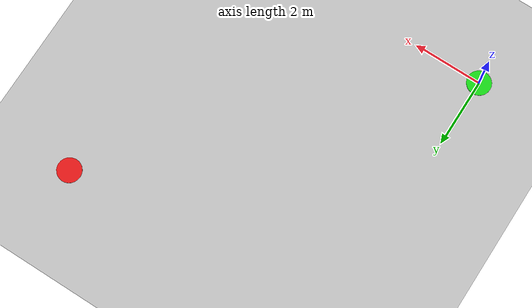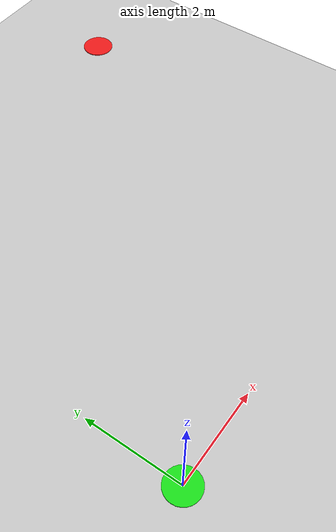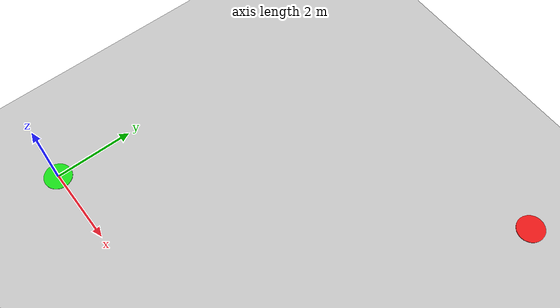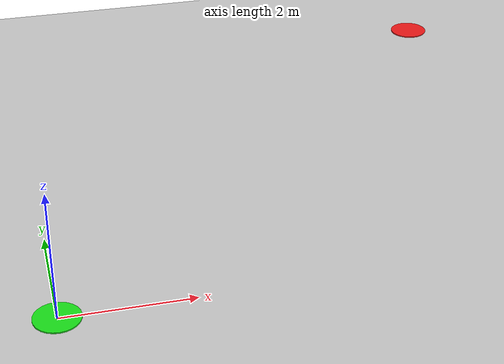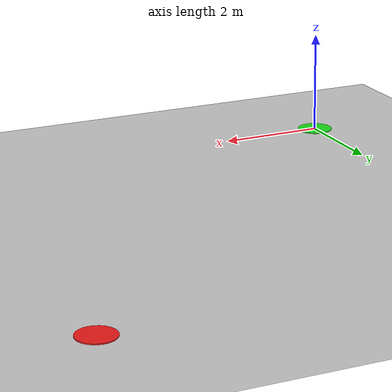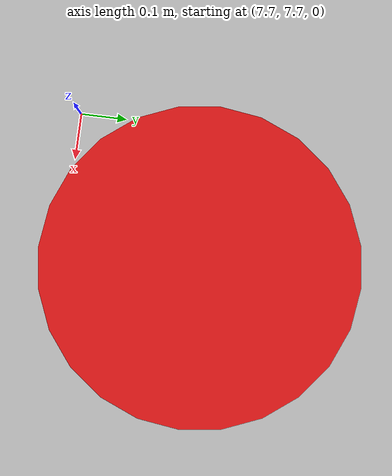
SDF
<?xml version="1.0" ?>
<sdf version="1.6">
  <world name="level0_map">
    <gravity>0 0 -9.8</gravity>
    <physics type="ode">
      <max_step_size>0.001</max_step_size>
      <real_time_factor>1.0</real_time_factor>
      <real_time_update_rate>1000</real_time_update_rate>
    </physics>

    <plugin name="gazebo_ros_state" filename="libgazebo_ros_state.so">
      <update_rate>50.0</update_rate>
    </plugin>

    <include>
      <uri>model://sun</uri>
    </include>

    <!-- Level0：空旷底图 + 起点/终点可视化标记 -->
    <include>
      <uri>model://ground_plane</uri>
    </include>

    <!-- 起点标记：绿色圆圈（默认与 launch 的 spawn x/y 对齐为 (0,0)） -->
    <model name="start_marker">
      <static>true</static>
      <pose>0 0 0.01 0 0 0</pose>
      <link name="link">
        <visual name="visual">
          <geometry>
            <cylinder>
              <radius>0.35</radius>
              <length>0.02</length>
            </cylinder>
          </geometry>
          <material>
            <ambient>0.1 0.8 0.1 1</ambient>
            <diffuse>0.1 0.9 0.1 1</diffuse>
          </material>
        </visual>
      </link>
    </model>

    <!-- 终点标记：红色圆圈（默认与 env 的固定 goal 对齐为 (2,2)） -->
    <model name="goal_marker">
      <static>true</static>
      <pose>8 8 0.01 0 0 0</pose>
      <link name="link">
        <visual name="visual">
          <geometry>
            <cylinder>
              <radius>0.35</radius>
              <length>0.02</length>
            </cylinder>
          </geometry>
          <material>
            <ambient>0.85 0.1 0.1 1</ambient>
            <diffuse>0.95 0.1 0.1 1</diffuse>
          </material>
        </visual>
      </link>
    </model>

    <gui fullscreen="0">
      <camera name="user_camera">
        <pose>6 -6 6 0 0.6 2.35</pose>
      </camera>
    </gui>
  </world>
</sdf>
